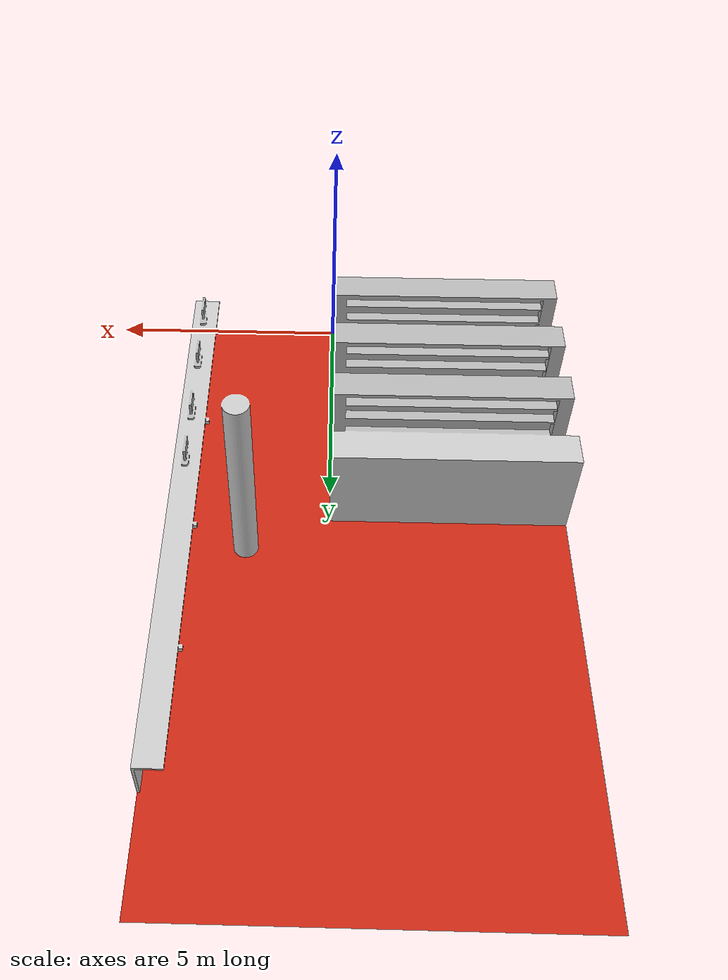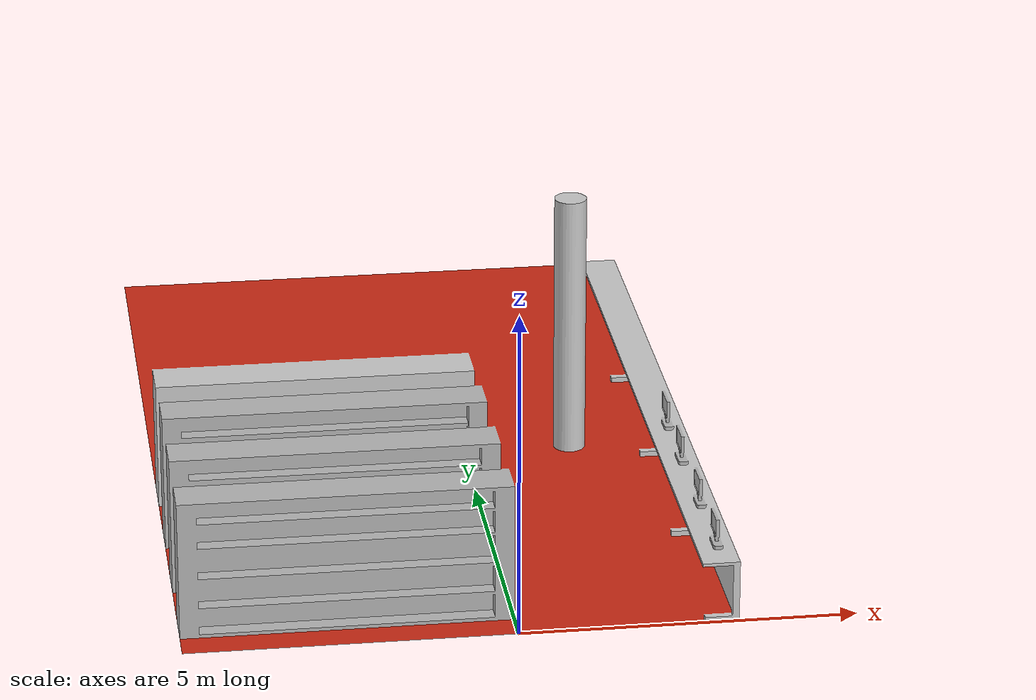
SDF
<?xml version="1.0"?>
<sdf version="1.6">
  <world name="biblioteca">
    <physics type="ode" name="split_unthrottled3">
      <real_time_factor>1.0</real_time_factor>
      <real_time_update_rate>500.0</real_time_update_rate>
      <max_step_size>0.002</max_step_size>
      <ode>
        <solver>
          <type>quick</type>
          <sor>1.4</sor>
          <thread_position_correction>1</thread_position_correction>
          <island_threads>4</island_threads>
        </solver>
      </ode>
    </physics>
	  <scene>
		  <ambient>0.4 0.4 0.4 1</ambient>
		  <background>0.3 0.7 0.9 1</background>
		  <shadows>0</shadows>
		  <grid>1</grid>
	  </scene>
    <model name="library">
      <pose>0 0 0  0 0 0</pose>
      <static>true</static>
      <link name="main">
        <visual name="visual">
          <geometry>
            <mesh>
              <uri>model://use_case_resources/library/meshes/library.dae</uri>
            </mesh>
          </geometry>
        </visual>
        <collision name="collision">
          <geometry>
            <mesh>
              <uri>model://use_case_resources/library/meshes/library_collision.dae</uri>
            </mesh>
          </geometry>
        </collision>
      </link>
    </model>
    <light type="directional" name="light1">
      <pose>1.5 6.0 3.0 0 0 0</pose>
      <diffuse>1 1 1 1</diffuse>
      <specular>0.3 0.3 0.3 1</specular>
      <attenuation>
        <range>20</range>
        <linear>0.01</linear>
        <constant>0.50</constant>
        <quadratic>0</quadratic>
      </attenuation>
      <cast_shadows>false</cast_shadows>
    </light>
    <light type="directional" name="light2">
      <pose>1.5 1.0 3.0 0 0 0</pose>
      <diffuse>1 1 1 1</diffuse>
      <specular>0.3 0.3 0.3 1</specular>
      <attenuation>
        <range>20</range>
        <linear>0.01</linear>
        <constant>0.50</constant>
        <quadratic>0</quadratic>
      </attenuation>
      <cast_shadows>false</cast_shadows>
    </light>
  </world>
</sdf>
